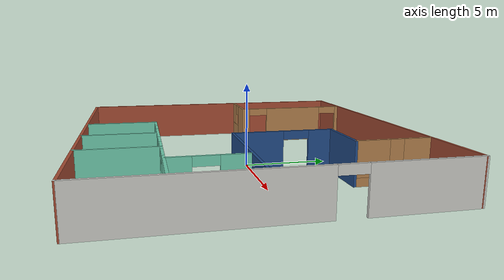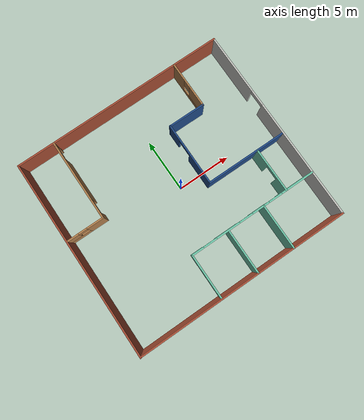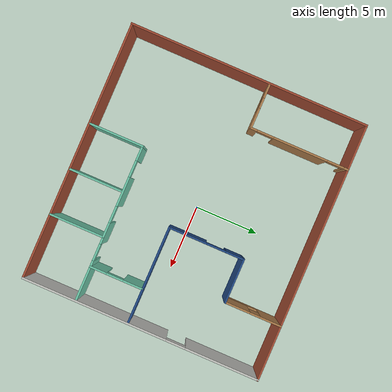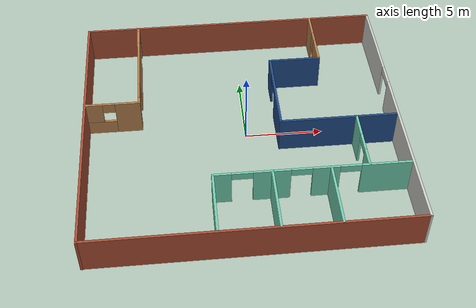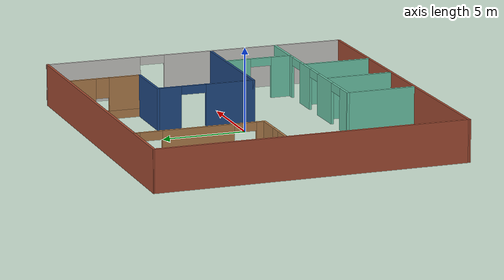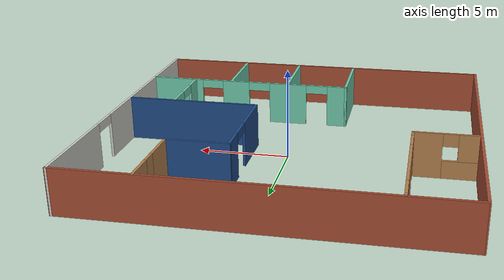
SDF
<?xml version='1.0'?>
<sdf version='1.6'>
  <model name='office'>
    <pose frame=''>-0.350002 -0.306689 0 0 -0 0</pose>
    <link name='Wall_100'>
      <pose frame=''>3.87328 -5.05004 0 0 -0 0</pose>
      <visual name='Wall_100_Visual_0'>
        <pose frame=''>-5.5246 0 1.25 0 -0 0</pose>
        <geometry>
          <box>
            <size>1.2008 0.15 2.5</size>
          </box>
        </geometry>
        <material>
          <script>
            <uri>file://media/materials/scripts/gazebo.material</uri>
            <name>Gazebo/Grey</name>
          </script>
          <ambient>0.435294 0.796078 0.67451 1</ambient>
        </material>
        <meta>
          <layer>0</layer>
        </meta>
      </visual>
      <collision name='Wall_100_Collision_0'>
        <geometry>
          <box>
            <size>1.2008 0.15 2.5</size>
          </box>
        </geometry>
        <pose frame=''>-5.5246 0 1.25 0 -0 0</pose>
      </collision>
      <visual name='Wall_100_Visual_1'>
        <pose frame=''>-2.48178 0 1.25 0 -0 0</pose>
        <geometry>
          <box>
            <size>2.28483 0.15 2.5</size>
          </box>
        </geometry>
        <material>
          <script>
            <uri>file://media/materials/scripts/gazebo.material</uri>
            <name>Gazebo/Grey</name>
          </script>
          <ambient>0.435294 0.796078 0.67451 1</ambient>
        </material>
        <meta>
          <layer>0</layer>
        </meta>
      </visual>
      <collision name='Wall_100_Collision_1'>
        <geometry>
          <box>
            <size>2.28483 0.15 2.5</size>
          </box>
        </geometry>
        <pose frame=''>-2.48178 0 1.25 0 -0 0</pose>
      </collision>
      <visual name='Wall_100_Visual_2'>
        <pose frame=''>0.798914 0 1.25 0 -0 0</pose>
        <geometry>
          <box>
            <size>1.67657 0.15 2.5</size>
          </box>
        </geometry>
        <material>
          <script>
            <uri>file://media/materials/scripts/gazebo.material</uri>
            <name>Gazebo/Grey</name>
          </script>
          <ambient>0.435294 0.796078 0.67451 1</ambient>
        </material>
        <meta>
          <layer>0</layer>
        </meta>
      </visual>
      <collision name='Wall_100_Collision_2'>
        <geometry>
          <box>
            <size>1.67657 0.15 2.5</size>
          </box>
        </geometry>
        <pose frame=''>0.798914 0 1.25 0 -0 0</pose>
      </collision>
      <visual name='Wall_100_Visual_3'>
        <pose frame=''>4.5311 0 1.25 0 -0 0</pose>
        <geometry>
          <box>
            <size>3.1878 0.15 2.5</size>
          </box>
        </geometry>
        <material>
          <script>
            <uri>file://media/materials/scripts/gazebo.material</uri>
            <name>Gazebo/Grey</name>
          </script>
          <ambient>0.435294 0.796078 0.67451 1</ambient>
        </material>
        <meta>
          <layer>0</layer>
        </meta>
      </visual>
      <collision name='Wall_100_Collision_3'>
        <geometry>
          <box>
            <size>3.1878 0.15 2.5</size>
          </box>
        </geometry>
        <pose frame=''>4.5311 0 1.25 0 -0 0</pose>
      </collision>
      <visual name='Wall_100_Visual_4'>
        <pose frame=''>-4.2742 0 2.25 0 -0 0</pose>
        <geometry>
          <box>
            <size>1.3 0.15 0.5</size>
          </box>
        </geometry>
        <material>
          <script>
            <uri>file://media/materials/scripts/gazebo.material</uri>
            <name>Gazebo/Grey</name>
          </script>
          <ambient>0.435294 0.796078 0.67451 1</ambient>
        </material>
        <meta>
          <layer>0</layer>
        </meta>
      </visual>
      <collision name='Wall_100_Collision_4'>
        <geometry>
          <box>
            <size>1.3 0.15 0.5</size>
          </box>
        </geometry>
        <pose frame=''>-4.2742 0 2.25 0 -0 0</pose>
      </collision>
      <visual name='Wall_100_Visual_5'>
        <pose frame=''>-0.689371 0 2.25 0 -0 0</pose>
        <geometry>
          <box>
            <size>1.3 0.15 0.5</size>
          </box>
        </geometry>
        <material>
          <script>
            <uri>file://media/materials/scripts/gazebo.material</uri>
            <name>Gazebo/Grey</name>
          </script>
          <ambient>0.435294 0.796078 0.67451 1</ambient>
        </material>
        <meta>
          <layer>0</layer>
        </meta>
      </visual>
      <collision name='Wall_100_Collision_5'>
        <geometry>
          <box>
            <size>1.3 0.15 0.5</size>
          </box>
        </geometry>
        <pose frame=''>-0.689371 0 2.25 0 -0 0</pose>
      </collision>
      <visual name='Wall_100_Visual_6'>
        <pose frame=''>2.2872 0 2.25 0 -0 0</pose>
        <geometry>
          <box>
            <size>1.3 0.15 0.5</size>
          </box>
        </geometry>
        <material>
          <script>
            <uri>file://media/materials/scripts/gazebo.material</uri>
            <name>Gazebo/Grey</name>
          </script>
          <ambient>0.435294 0.796078 0.67451 1</ambient>
        </material>
        <meta>
          <layer>0</layer>
        </meta>
      </visual>
      <collision name='Wall_100_Collision_6'>
        <geometry>
          <box>
            <size>1.3 0.15 0.5</size>
          </box>
        </geometry>
        <pose frame=''>2.2872 0 2.25 0 -0 0</pose>
      </collision>
    </link>
    <link name='Wall_102'>
      <collision name='Wall_102_Collision'>
        <geometry>
          <box>
            <size>20.1151 0.15 2.5</size>
          </box>
        </geometry>
        <pose frame=''>0 0 1.25 0 -0 0</pose>
      </collision>
      <visual name='Wall_102_Visual'>
        <pose frame=''>0 0 1.25 0 -0 0</pose>
        <geometry>
          <box>
            <size>20.1151 0.15 2.5</size>
          </box>
        </geometry>
        <material>
          <script>
            <uri>file://media/materials/scripts/gazebo.material</uri>
            <name>Gazebo/Bricks</name>
          </script>
          <ambient>1 1 1 1</ambient>
        </material>
        <meta>
          <layer>0</layer>
        </meta>
      </visual>
      <pose frame=''>0.012485 9.2376 0 0 -0 0.003515</pose>
    </link>
    <link name='Wall_31'>
      <collision name='Wall_31_Collision'>
        <geometry>
          <box>
            <size>20.1151 0.15 2.5</size>
          </box>
        </geometry>
        <pose frame=''>0 0 1.25 0 -0 0</pose>
      </collision>
      <visual name='Wall_31_Visual'>
        <pose frame=''>0 0 1.25 0 -0 0</pose>
        <geometry>
          <box>
            <size>20.1151 0.15 2.5</size>
          </box>
        </geometry>
        <material>
          <script>
            <uri>file://media/materials/scripts/gazebo.material</uri>
            <name>Gazebo/Bricks</name>
          </script>
          <ambient>1 1 1 1</ambient>
        </material>
        <meta>
          <layer>0</layer>
        </meta>
      </visual>
      <pose frame=''>-0.012543 -9.22507 0 0 -0 0.00228</pose>
    </link>
    <link name='Wall_32'>
      <pose frame=''>9.9825 0.035189 0 0 -0 1.56944</pose>
      <visual name='Wall_32_Visual_0'>
        <pose frame=''>-3.6506 0 1.25 0 -0 0</pose>
        <geometry>
          <box>
            <size>11.3242 0.15 2.5</size>
          </box>
        </geometry>
        <material>
          <script>
            <uri>file://media/materials/scripts/gazebo.material</uri>
            <name>Gazebo/CeilingTiled</name>
          </script>
          <ambient>1 1 1 1</ambient>
        </material>
        <meta>
          <layer>0</layer>
        </meta>
      </visual>
      <collision name='Wall_32_Collision_0'>
        <geometry>
          <box>
            <size>11.3242 0.15 2.5</size>
          </box>
        </geometry>
        <pose frame=''>-3.6506 0 1.25 0 -0 0</pose>
      </collision>
      <visual name='Wall_32_Visual_1'>
        <pose frame=''>6.41211 0 1.25 0 -0 0</pose>
        <geometry>
          <box>
            <size>5.8012 0.15 2.5</size>
          </box>
        </geometry>
        <material>
          <script>
            <uri>file://media/materials/scripts/gazebo.material</uri>
            <name>Gazebo/CeilingTiled</name>
          </script>
          <ambient>1 1 1 1</ambient>
        </material>
        <meta>
          <layer>0</layer>
        </meta>
      </visual>
      <collision name='Wall_32_Collision_1'>
        <geometry>
          <box>
            <size>5.8012 0.15 2.5</size>
          </box>
        </geometry>
        <pose frame=''>6.41211 0 1.25 0 -0 0</pose>
      </collision>
      <visual name='Wall_32_Visual_2'>
        <pose frame=''>2.76151 0 2.25 0 -0 0</pose>
        <geometry>
          <box>
            <size>1.5 0.15 0.5</size>
          </box>
        </geometry>
        <material>
          <script>
            <uri>file://media/materials/scripts/gazebo.material</uri>
            <name>Gazebo/CeilingTiled</name>
          </script>
          <ambient>1 1 1 1</ambient>
        </material>
        <meta>
          <layer>0</layer>
        </meta>
      </visual>
      <collision name='Wall_32_Collision_2'>
        <geometry>
          <box>
            <size>1.5 0.15 0.5</size>
          </box>
        </geometry>
        <pose frame=''>2.76151 0 2.25 0 -0 0</pose>
      </collision>
    </link>
    <link name='Wall_34'>
      <pose frame=''>5.77997 7.07751 0 0 -0 -1.5708</pose>
      <visual name='Wall_34_Visual_0'>
        <pose frame=''>-1.39732 0 1.25 0 -0 0</pose>
        <geometry>
          <box>
            <size>1.70536 0.15 2.5</size>
          </box>
        </geometry>
        <material>
          <script>
            <uri>file://media/materials/scripts/gazebo.material</uri>
            <name>Gazebo/Wood</name>
          </script>
          <ambient>0.12549 0.290196 0.529412 1</ambient>
        </material>
        <meta>
          <layer>0</layer>
        </meta>
      </visual>
      <collision name='Wall_34_Collision_0'>
        <geometry>
          <box>
            <size>1.70536 0.15 2.5</size>
          </box>
        </geometry>
        <pose frame=''>-1.39732 0 1.25 0 -0 0</pose>
      </collision>
      <visual name='Wall_34_Visual_1'>
        <pose frame=''>0.852681 0 0.25 0 -0 0</pose>
        <geometry>
          <box>
            <size>2.79464 0.15 0.5</size>
          </box>
        </geometry>
        <material>
          <script>
            <uri>file://media/materials/scripts/gazebo.material</uri>
            <name>Gazebo/Wood</name>
          </script>
          <ambient>0.12549 0.290196 0.529412 1</ambient>
        </material>
        <meta>
          <layer>0</layer>
        </meta>
      </visual>
      <collision name='Wall_34_Collision_1'>
        <geometry>
          <box>
            <size>2.79464 0.15 0.5</size>
          </box>
        </geometry>
        <pose frame=''>0.852681 0 0.25 0 -0 0</pose>
      </collision>
      <visual name='Wall_34_Visual_2'>
        <pose frame=''>1.25268 0 1.5 0 -0 0</pose>
        <geometry>
          <box>
            <size>1.99464 0.15 2</size>
          </box>
        </geometry>
        <material>
          <script>
            <uri>file://media/materials/scripts/gazebo.material</uri>
            <name>Gazebo/Wood</name>
          </script>
          <ambient>0.12549 0.290196 0.529412 1</ambient>
        </material>
        <meta>
          <layer>0</layer>
        </meta>
      </visual>
      <collision name='Wall_34_Collision_2'>
        <geometry>
          <box>
            <size>1.99464 0.15 2</size>
          </box>
        </geometry>
        <pose frame=''>1.25268 0 1.5 0 -0 0</pose>
      </collision>
      <visual name='Wall_34_Visual_3'>
        <pose frame=''>-0.144637 0 1.9 0 -0 0</pose>
        <geometry>
          <box>
            <size>0.8 0.15 1.2</size>
          </box>
        </geometry>
        <material>
          <script>
            <uri>file://media/materials/scripts/gazebo.material</uri>
            <name>Gazebo/Wood</name>
          </script>
          <ambient>0.12549 0.290196 0.529412 1</ambient>
        </material>
        <meta>
          <layer>0</layer>
        </meta>
      </visual>
      <collision name='Wall_34_Collision_3'>
        <geometry>
          <box>
            <size>0.8 0.15 1.2</size>
          </box>
        </geometry>
        <pose frame=''>-0.144637 0 1.9 0 -0 0</pose>
      </collision>
    </link>
    <link name='Wall_35'>
      <collision name='Wall_35_Collision'>
        <geometry>
          <box>
            <size>3.5 0.15 2.5</size>
          </box>
        </geometry>
        <pose frame=''>0 0 1.25 0 -0 0</pose>
      </collision>
      <visual name='Wall_35_Visual'>
        <pose frame=''>0 0 1.25 0 -0 0</pose>
        <geometry>
          <box>
            <size>3.5 0.15 2.5</size>
          </box>
        </geometry>
        <material>
          <script>
            <uri>file://media/materials/scripts/gazebo.material</uri>
            <name>Gazebo/Grey</name>
          </script>
          <ambient>0.12549 0.290196 0.529412 1</ambient>
        </material>
        <meta>
          <layer>0</layer>
        </meta>
      </visual>
      <pose frame=''>4.10497 4.90251 0 0 -0 3.14159</pose>
    </link>
    <link name='Wall_40'>
      <pose frame=''>2.42997 1.97751 0 0 -0 -1.5708</pose>
      <visual name='Wall_40_Visual_0'>
        <pose frame=''>-2.25699 0 1.25 0 -0 0</pose>
        <geometry>
          <box>
            <size>1.48601 0.15 2.5</size>
          </box>
        </geometry>
        <material>
          <script>
            <uri>file://media/materials/scripts/gazebo.material</uri>
            <name>Gazebo/Grey</name>
          </script>
          <ambient>0.12549 0.290196 0.529412 1</ambient>
        </material>
        <meta>
          <layer>0</layer>
        </meta>
      </visual>
      <collision name='Wall_40_Collision_0'>
        <geometry>
          <box>
            <size>1.48601 0.15 2.5</size>
          </box>
        </geometry>
        <pose frame=''>-2.25699 0 1.25 0 -0 0</pose>
      </collision>
      <visual name='Wall_40_Visual_1'>
        <pose frame=''>1.493 0 1.25 0 -0 0</pose>
        <geometry>
          <box>
            <size>3.01399 0.15 2.5</size>
          </box>
        </geometry>
        <material>
          <script>
            <uri>file://media/materials/scripts/gazebo.material</uri>
            <name>Gazebo/Grey</name>
          </script>
          <ambient>0.12549 0.290196 0.529412 1</ambient>
        </material>
        <meta>
          <layer>0</layer>
        </meta>
      </visual>
      <collision name='Wall_40_Collision_1'>
        <geometry>
          <box>
            <size>3.01399 0.15 2.5</size>
          </box>
        </geometry>
        <pose frame=''>1.493 0 1.25 0 -0 0</pose>
      </collision>
      <visual name='Wall_40_Visual_2'>
        <pose frame=''>-0.76399 0 2.25 0 -0 0</pose>
        <geometry>
          <box>
            <size>1.5 0.15 0.5</size>
          </box>
        </geometry>
        <material>
          <script>
            <uri>file://media/materials/scripts/gazebo.material</uri>
            <name>Gazebo/Grey</name>
          </script>
          <ambient>0.12549 0.290196 0.529412 1</ambient>
        </material>
        <meta>
          <layer>0</layer>
        </meta>
      </visual>
      <collision name='Wall_40_Collision_2'>
        <geometry>
          <box>
            <size>1.5 0.15 0.5</size>
          </box>
        </geometry>
        <pose frame=''>-0.76399 0 2.25 0 -0 0</pose>
      </collision>
    </link>
    <link name='Wall_43'>
      <collision name='Wall_43_Collision'>
        <geometry>
          <box>
            <size>18.6254 0.15 2.5</size>
          </box>
        </geometry>
        <pose frame=''>0 0 1.25 0 -0 0</pose>
      </collision>
      <visual name='Wall_43_Visual'>
        <pose frame=''>0 0 1.25 0 -0 0</pose>
        <geometry>
          <box>
            <size>18.6254 0.15 2.5</size>
          </box>
        </geometry>
        <material>
          <script>
            <uri>file://media/materials/scripts/gazebo.material</uri>
            <name>Gazebo/Bricks</name>
          </script>
          <ambient>1 1 1 1</ambient>
        </material>
        <meta>
          <layer>0</layer>
        </meta>
      </visual>
      <pose frame=''>-9.98256 -0.035189 0 0 -0 1.56944</pose>
    </link>
    <link name='Wall_58'>
      <collision name='Wall_58_Collision'>
        <geometry>
          <box>
            <size>7.55 0.15 2.5</size>
          </box>
        </geometry>
        <pose frame=''>0 0 1.25 0 -0 0</pose>
      </collision>
      <visual name='Wall_58_Visual'>
        <pose frame=''>0 0 1.25 0 -0 0</pose>
        <geometry>
          <box>
            <size>7.55 0.15 2.5</size>
          </box>
        </geometry>
        <material>
          <script>
            <uri>file://media/materials/scripts/gazebo.material</uri>
            <name>Gazebo/Grey</name>
          </script>
          <ambient>0.12549 0.290196 0.529412 1</ambient>
        </material>
        <meta>
          <layer>0</layer>
        </meta>
      </visual>
      <pose frame=''>6.12997 -0.947492 0 0 -0 0</pose>
    </link>
    <link name='Wall_83'>
      <pose frame=''>-6.499 5.40169 0 0 -0 -1.5708</pose>
      <visual name='Wall_83_Visual_0'>
        <pose frame=''>-3.68643 0 1.25 0 -0 0</pose>
        <geometry>
          <box>
            <size>0.377131 0.15 2.5</size>
          </box>
        </geometry>
        <material>
          <script>
            <uri>file://media/materials/scripts/gazebo.material</uri>
            <name>Gazebo/Wood</name>
          </script>
          <ambient>0.996078 0.47451 0.0196078 1</ambient>
        </material>
        <meta>
          <layer>0</layer>
        </meta>
      </visual>
      <collision name='Wall_83_Collision_0'>
        <geometry>
          <box>
            <size>0.377131 0.15 2.5</size>
          </box>
        </geometry>
        <pose frame=''>-3.68643 0 1.25 0 -0 0</pose>
      </collision>
      <visual name='Wall_83_Visual_1'>
        <pose frame=''>-0.095603 0 1.25 0 -0 0</pose>
        <geometry>
          <box>
            <size>4.20453 0.15 2.5</size>
          </box>
        </geometry>
        <material>
          <script>
            <uri>file://media/materials/scripts/gazebo.material</uri>
            <name>Gazebo/Wood</name>
          </script>
          <ambient>0.996078 0.47451 0.0196078 1</ambient>
        </material>
        <meta>
          <layer>0</layer>
        </meta>
      </visual>
      <collision name='Wall_83_Collision_1'>
        <geometry>
          <box>
            <size>4.20453 0.15 2.5</size>
          </box>
        </geometry>
        <pose frame=''>-0.095603 0 1.25 0 -0 0</pose>
      </collision>
      <visual name='Wall_83_Visual_2'>
        <pose frame=''>3.59083 0 1.25 0 -0 0</pose>
        <geometry>
          <box>
            <size>0.568336 0.15 2.5</size>
          </box>
        </geometry>
        <material>
          <script>
            <uri>file://media/materials/scripts/gazebo.material</uri>
            <name>Gazebo/Wood</name>
          </script>
          <ambient>0.996078 0.47451 0.0196078 1</ambient>
        </material>
        <meta>
          <layer>0</layer>
        </meta>
      </visual>
      <collision name='Wall_83_Collision_2'>
        <geometry>
          <box>
            <size>0.568336 0.15 2.5</size>
          </box>
        </geometry>
        <pose frame=''>3.59083 0 1.25 0 -0 0</pose>
      </collision>
      <visual name='Wall_83_Visual_3'>
        <pose frame=''>-2.84787 0 2.25 0 -0 0</pose>
        <geometry>
          <box>
            <size>1.3 0.15 0.5</size>
          </box>
        </geometry>
        <material>
          <script>
            <uri>file://media/materials/scripts/gazebo.material</uri>
            <name>Gazebo/Wood</name>
          </script>
          <ambient>0.996078 0.47451 0.0196078 1</ambient>
        </material>
        <meta>
          <layer>0</layer>
        </meta>
      </visual>
      <collision name='Wall_83_Collision_3'>
        <geometry>
          <box>
            <size>1.3 0.15 0.5</size>
          </box>
        </geometry>
        <pose frame=''>-2.84787 0 2.25 0 -0 0</pose>
      </collision>
      <visual name='Wall_83_Visual_4'>
        <pose frame=''>2.65666 0 2.25 0 -0 0</pose>
        <geometry>
          <box>
            <size>1.3 0.15 0.5</size>
          </box>
        </geometry>
        <material>
          <script>
            <uri>file://media/materials/scripts/gazebo.material</uri>
            <name>Gazebo/Wood</name>
          </script>
          <ambient>0.996078 0.47451 0.0196078 1</ambient>
        </material>
        <meta>
          <layer>0</layer>
        </meta>
      </visual>
      <collision name='Wall_83_Collision_4'>
        <geometry>
          <box>
            <size>1.3 0.15 0.5</size>
          </box>
        </geometry>
        <pose frame=''>2.65666 0 2.25 0 -0 0</pose>
      </collision>
    </link>
    <link name='Wall_84'>
      <pose frame=''>-8.17411 1.60163 0 0 -0 -3.14156</pose>
      <visual name='Wall_84_Visual_0'>
        <pose frame=''>-0.938412 0 1.25 0 -0 0</pose>
        <geometry>
          <box>
            <size>1.62318 0.15 2.5</size>
          </box>
        </geometry>
        <material>
          <script>
            <uri>file://media/materials/scripts/gazebo.material</uri>
            <name>Gazebo/Wood</name>
          </script>
          <ambient>0.996078 0.47451 0.0196078 1</ambient>
        </material>
        <meta>
          <layer>0</layer>
        </meta>
      </visual>
      <collision name='Wall_84_Collision_0'>
        <geometry>
          <box>
            <size>1.62318 0.15 2.5</size>
          </box>
        </geometry>
        <pose frame=''>-0.938412 0 1.25 0 -0 0</pose>
      </collision>
      <visual name='Wall_84_Visual_1'>
        <pose frame=''>0.811588 0 0.5 0 -0 0</pose>
        <geometry>
          <box>
            <size>1.87682 0.15 1</size>
          </box>
        </geometry>
        <material>
          <script>
            <uri>file://media/materials/scripts/gazebo.material</uri>
            <name>Gazebo/Wood</name>
          </script>
          <ambient>0.996078 0.47451 0.0196078 1</ambient>
        </material>
        <meta>
          <layer>0</layer>
        </meta>
      </visual>
      <collision name='Wall_84_Collision_1'>
        <geometry>
          <box>
            <size>1.87682 0.15 1</size>
          </box>
        </geometry>
        <pose frame=''>0.811588 0 0.5 0 -0 0</pose>
      </collision>
      <visual name='Wall_84_Visual_2'>
        <pose frame=''>1.21159 0 1.75 0 -0 0</pose>
        <geometry>
          <box>
            <size>1.07682 0.15 1.5</size>
          </box>
        </geometry>
        <material>
          <script>
            <uri>file://media/materials/scripts/gazebo.material</uri>
            <name>Gazebo/Wood</name>
          </script>
          <ambient>0.996078 0.47451 0.0196078 1</ambient>
        </material>
        <meta>
          <layer>0</layer>
        </meta>
      </visual>
      <collision name='Wall_84_Collision_2'>
        <geometry>
          <box>
            <size>1.07682 0.15 1.5</size>
          </box>
        </geometry>
        <pose frame=''>1.21159 0 1.75 0 -0 0</pose>
      </collision>
      <visual name='Wall_84_Visual_3'>
        <pose frame=''>0.273176 0 2.15 0 -0 0</pose>
        <geometry>
          <box>
            <size>0.8 0.15 0.7</size>
          </box>
        </geometry>
        <material>
          <script>
            <uri>file://media/materials/scripts/gazebo.material</uri>
            <name>Gazebo/Wood</name>
          </script>
          <ambient>0.996078 0.47451 0.0196078 1</ambient>
        </material>
        <meta>
          <layer>0</layer>
        </meta>
      </visual>
      <collision name='Wall_84_Collision_3'>
        <geometry>
          <box>
            <size>0.8 0.15 0.7</size>
          </box>
        </geometry>
        <pose frame=''>0.273176 0 2.15 0 -0 0</pose>
      </collision>
    </link>
    <link name='Wall_87'>
      <pose frame=''>7.28385 -3.02299 0 0 -0 -1.5708</pose>
      <visual name='Wall_87_Visual_0'>
        <pose frame=''>-1.31272 0 1.25 0 -0 0</pose>
        <geometry>
          <box>
            <size>1.57456 0.15 2.5</size>
          </box>
        </geometry>
        <material>
          <script>
            <uri>file://media/materials/scripts/gazebo.material</uri>
            <name>Gazebo/Grey</name>
          </script>
          <ambient>0.435294 0.796078 0.67451 1</ambient>
        </material>
        <meta>
          <layer>0</layer>
        </meta>
      </visual>
      <collision name='Wall_87_Collision_0'>
        <geometry>
          <box>
            <size>1.57456 0.15 2.5</size>
          </box>
        </geometry>
        <pose frame=''>-1.31272 0 1.25 0 -0 0</pose>
      </collision>
      <visual name='Wall_87_Visual_1'>
        <pose frame=''>1.43728 0 1.25 0 -0 0</pose>
        <geometry>
          <box>
            <size>1.32543 0.15 2.5</size>
          </box>
        </geometry>
        <material>
          <script>
            <uri>file://media/materials/scripts/gazebo.material</uri>
            <name>Gazebo/Grey</name>
          </script>
          <ambient>0.435294 0.796078 0.67451 1</ambient>
        </material>
        <meta>
          <layer>0</layer>
        </meta>
      </visual>
      <collision name='Wall_87_Collision_1'>
        <geometry>
          <box>
            <size>1.32543 0.15 2.5</size>
          </box>
        </geometry>
        <pose frame=''>1.43728 0 1.25 0 -0 0</pose>
      </collision>
      <visual name='Wall_87_Visual_2'>
        <pose frame=''>0.124565 0 2.25 0 -0 0</pose>
        <geometry>
          <box>
            <size>1.3 0.15 0.5</size>
          </box>
        </geometry>
        <material>
          <script>
            <uri>file://media/materials/scripts/gazebo.material</uri>
            <name>Gazebo/Grey</name>
          </script>
          <ambient>0.435294 0.796078 0.67451 1</ambient>
        </material>
        <meta>
          <layer>0</layer>
        </meta>
      </visual>
      <collision name='Wall_87_Collision_2'>
        <geometry>
          <box>
            <size>1.3 0.15 0.5</size>
          </box>
        </geometry>
        <pose frame=''>0.124565 0 2.25 0 -0 0</pose>
      </collision>
    </link>
    <link name='Wall_89'>
      <collision name='Wall_89_Collision'>
        <geometry>
          <box>
            <size>4.25 0.15 2.5</size>
          </box>
        </geometry>
        <pose frame=''>0 0 1.25 0 -0 0</pose>
      </collision>
      <visual name='Wall_89_Visual'>
        <pose frame=''>0 0 1.25 0 -0 0</pose>
        <geometry>
          <box>
            <size>4.25 0.15 2.5</size>
          </box>
        </geometry>
        <material>
          <script>
            <uri>file://media/materials/scripts/gazebo.material</uri>
            <name>Gazebo/Grey</name>
          </script>
          <ambient>0.435294 0.796078 0.67451 1</ambient>
        </material>
        <meta>
          <layer>0</layer>
        </meta>
      </visual>
      <pose frame=''>4.96424 -7.13054 0 0 -0 -1.5708</pose>
    </link>
    <link name='Wall_91'>
      <collision name='Wall_91_Collision'>
        <geometry>
          <box>
            <size>4.25 0.15 2.5</size>
          </box>
        </geometry>
        <pose frame=''>0 0 1.25 0 -0 0</pose>
      </collision>
      <visual name='Wall_91_Visual'>
        <pose frame=''>0 0 1.25 0 -0 0</pose>
        <geometry>
          <box>
            <size>4.25 0.15 2.5</size>
          </box>
        </geometry>
        <material>
          <script>
            <uri>file://media/materials/scripts/gazebo.material</uri>
            <name>Gazebo/Grey</name>
          </script>
          <ambient>0.435294 0.796078 0.67451 1</ambient>
        </material>
        <meta>
          <layer>0</layer>
        </meta>
      </visual>
      <pose frame=''>1.40966 -7.1075 0 0 -0 -1.5708</pose>
    </link>
    <link name='Wall_93'>
      <collision name='Wall_93_Collision'>
        <geometry>
          <box>
            <size>4.25 0.15 2.5</size>
          </box>
        </geometry>
        <pose frame=''>0 0 1.25 0 -0 0</pose>
      </collision>
      <visual name='Wall_93_Visual'>
        <pose frame=''>0 0 1.25 0 -0 0</pose>
        <geometry>
          <box>
            <size>4.25 0.15 2.5</size>
          </box>
        </geometry>
        <material>
          <script>
            <uri>file://media/materials/scripts/gazebo.material</uri>
            <name>Gazebo/Grey</name>
          </script>
          <ambient>0.435294 0.796078 0.67451 1</ambient>
        </material>
        <meta>
          <layer>0</layer>
        </meta>
      </visual>
      <pose frame=''>-2.17672 -7.10004 0 0 -0 -1.5708</pose>
    </link>
    <static>1</static>
  </model>
</sdf>
